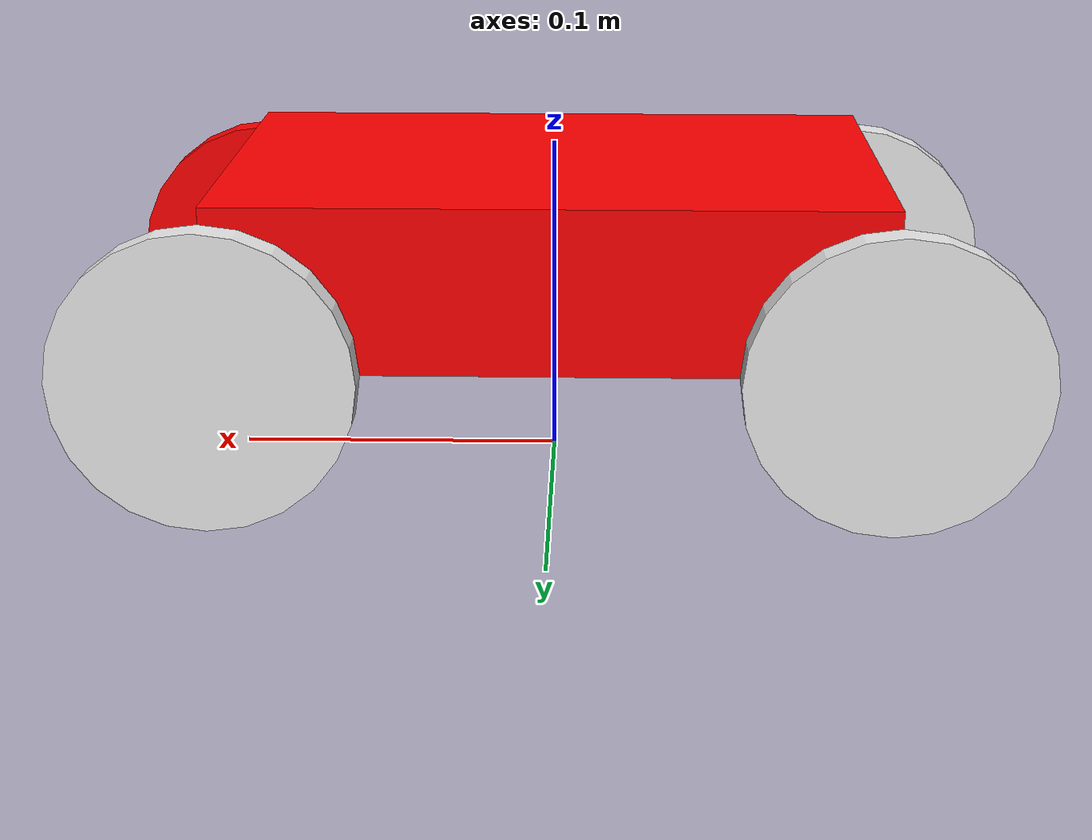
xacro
<?xml version="1.0"?>
<robot xmlns:xacro="http://www.ros.org/wiki/xacro" name="limo_ackerman">

    <xacro:include filename="gazebo.xacro"/>
    <xacro:include filename="imu.xacro"/>
    <xacro:include filename="transmission.xacro"/>

    <!-- Vehicle Geometries -->
    <xacro:property name="base_x_size" value="0.2" />
    <xacro:property name="base_y_size" value="0.13" />
    <xacro:property name="base_z_size" value="0.1" />
    <xacro:property name="wheelbase" value="0.2"/>
    <xacro:property name="track" value="0.14"/>
    <xacro:property name="base_mass" value="3.0"/>
    <xacro:property name="wheel_vertical_offset" value="0.0" />
    <xacro:property name="wheel_length" value="0.01" />
    <xacro:property name="wheel_radius" value="0.045" />

    <!-- BASE LINK -->

    <link name="base_footprint">

    </link>

    <!-- base_link LINK -->

    <joint name="base_joint" type="fixed">
        <parent link="base_footprint"/>
        <child link="base_link"/>
        <origin xyz="0 0 0.045"/>
    </joint>

    <link name="base_link">
        <xacro:inertial_box mass="3" x="${base_x_size}" y="${base_y_size}" z="${base_z_size}">
            <origin xyz="0 0 0.025" rpy="0 0 0"/>
        </xacro:inertial_box>
        <visual>
            <origin xyz="0 0 0.025" rpy="0 0 0" />
            <geometry>
                <box size="0.2 0.13 0.05"/>
            </geometry>
            <material name="Red">
                <color rgba="1 0 0 1"/>
            </material>
        </visual>
        <collision>
            <origin xyz="0 0 0.025" rpy="0 0 0" />
            <geometry>
                <box size="${base_x_size} ${base_y_size} ${base_z_size}"/>
            </geometry>
        </collision>
    </link>

    <!-- WHEEL LINK -->

    <link name="rear_right_wheel_link">
        <xacro:inertial_cylinder mass="0.1" length="${wheel_length}" radius="${wheel_radius}">
            <origin xyz="0 0 0" rpy="0 0 0"/>
        </xacro:inertial_cylinder>
        <visual>
            <origin xyz="0 0 0" rpy="0 0 0" />
            <geometry>
                <cylinder radius="${wheel_radius}" length="${wheel_length}1"/>
                <material name="Red">
                    <color rgba="1 0 0 1"/>
                </material>
            </geometry>
        </visual>
        <collision>
            <origin xyz="0 0 0" rpy="0 0 0" />
            <geometry>
                <cylinder radius="${wheel_radius}" length="${wheel_length}"/>
            </geometry>
        </collision>
    </link>

    <link name="rear_left_wheel_link">
        <xacro:inertial_cylinder mass="0.1" length="${wheel_length}" radius="${wheel_radius}">
            <origin xyz="0 0 0" rpy="0 0 0"/>
        </xacro:inertial_cylinder>
        <visual>
            <origin xyz="0 0 0" rpy="0 0 0" />
            <geometry>
                <cylinder radius="${wheel_radius}" length="${wheel_length}"/>
                <material name="Red">
                    <color rgba="1 0 0 1"/>
                </material>
            </geometry>
        </visual>
        <collision>
            <origin xyz="0 0 0" rpy="0 0 0" />
            <geometry>
                <cylinder radius="${wheel_radius}" length="${wheel_length}"/>
            </geometry>
        </collision>
    </link>

    <link name="front_right_wheel_link">
        <xacro:inertial_cylinder mass="0.1" length="${wheel_length}" radius="${wheel_radius}">
            <origin xyz="0 0 0" rpy="0 0 0"/>
        </xacro:inertial_cylinder>
        <visual>
            <origin xyz="0 0 0" rpy="0 0 0" />
            <geometry>
                <cylinder radius="${wheel_radius}" length="${wheel_length}"/>
            </geometry>
            <material name="Red">
                <color rgba="1 0 0 1"/>
            </material>
        </visual>
        <collision>
            <origin xyz="0 0 0" rpy="0 0 0" />
            <geometry>
                <cylinder radius="${wheel_radius}" length="${wheel_length}"/>
            </geometry>
        </collision>
    </link>

    <link name="front_left_wheel_link">
        <xacro:inertial_cylinder mass="0.1" length="${wheel_length}" radius="${wheel_radius}">
            <origin xyz="0 0 0" rpy="0 0 0"/>
        </xacro:inertial_cylinder>
        <visual>
            <origin xyz="0 0 0" rpy="0 0 0" />
            <geometry>
                <cylinder radius="${wheel_radius}" length="${wheel_length}"/>
                <material name="Red">
                    <color rgba="1 0 0 1"/>
                </material>
            </geometry>
        </visual>
        <collision>
            <origin xyz="0 0 0" rpy="0 0 0" />
            <geometry>
                <cylinder radius="${wheel_radius}" length="${wheel_length}"/>
            </geometry>
        </collision>
    </link>

    <link name="right_steering_hinge">
        <xacro:inertial_flip_cylinder mass="0.1" length="${wheel_length}" radius="${wheel_radius}">
            <origin xyz="0 0 0" rpy="0 0 0"/>
        </xacro:inertial_flip_cylinder>
    </link>
    <link name="left_steering_hinge">
        <xacro:inertial_flip_cylinder mass="0.1" length="${wheel_length}" radius="${wheel_radius}">
            <origin xyz="0 0 0" rpy="0 0 0"/>
        </xacro:inertial_flip_cylinder>
    </link>

    <!-- WHEEL JOINT -->

    <joint name="rear_left_wheel" type="continuous">
        <origin xyz="${-wheelbase/2} ${track/2} 0" rpy="-1.57079632679 0 0" />
        <parent link="base_link" />
        <child link="rear_left_wheel_link" />
        <axis xyz="0 0 1" />
        <limit
            effort="10.0"
            lower="-3.14159265359"
            upper="3.14159265359"
            velocity="20.0"
            />
    </joint>

    <joint name="rear_right_wheel" type="continuous">
        <origin xyz="${-wheelbase/2} ${-track/2} 0" rpy="-1.57079632679 0 0" />
        <parent link="base_link" />
        <child link="rear_right_wheel_link" />
        <axis xyz="0 0 1" />
        <limit
            effort="10.0"
            lower="-3.14159265359"
            upper="3.14159265359"
            velocity="20.0"
            />
    </joint>

    <joint name="left_steering_hinge_wheel" type="revolute">
        <origin xyz="${wheelbase/2} ${track/2} 0" rpy="0 0 0" />
        <parent link="base_link" />
        <child link="left_steering_hinge" />
        <axis xyz="0 0 1" />
        <limit
            effort="10.00"
            lower="-0.60"
            upper="0.60"
            velocity="10.00"/>
    </joint>

    <joint name="front_left_wheel" type="continuous">
        <origin xyz="0 0 0" rpy="-1.57079632679 0 0" />
        <parent link="left_steering_hinge" />
        <child link="front_left_wheel_link" />
        <axis xyz="0 0 1" />
        <limit
            effort="10.0"
            lower="-3.14159265359"
            upper="3.14159265359"
            velocity="20.0"
            />
    </joint>

    <joint name="right_steering_hinge_wheel" type="revolute">
        <origin xyz="${wheelbase/2} ${-track/2} 0" rpy="0 0 0" />
        <parent link="base_link" />
        <child link="right_steering_hinge" />
        <axis xyz="0 0 1" />
        <limit
            effort="10.00"
            lower="-0.60"
            upper="0.60"
            velocity="10.00"/>
    </joint>

    <joint name="front_right_wheel" type="continuous">
        <origin xyz="0 0 0" rpy="-1.57079632679 0 0" />
        <parent link="right_steering_hinge" />
        <child link="front_right_wheel_link" />
        <axis xyz="0 0 1" />
        <limit
            effort="10.0"
            lower="-3.14159265359"
            upper="3.14159265359"
            velocity="20.0"
            />
    </joint>

    <!-- TRANSMISSIONS -->
    <xacro:wheel_transmission wheel_prefix="left_front"/>
    <xacro:wheel_transmission wheel_prefix="right_front"/>
    <xacro:wheel_transmission wheel_prefix="left_rear"/>
    <xacro:wheel_transmission wheel_prefix="right_rear"/>
    <xacro:steering_hinge_transmission wheel_prefix="left"/>
    <xacro:steering_hinge_transmission wheel_prefix="right"/>

</robot>

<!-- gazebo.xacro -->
<robot xmlns:xacro="http://www.ros.org/wiki/xacro" name="ackbot">

    <xacro:include filename="inertial_macros.xacro"/>

    <ros2_control name="GazeboSystem" type="system">
        <hardware>
            <plugin>gazebo_ros2_control/GazeboSystem</plugin>
        </hardware>
        <joint name="rear_left_wheel">
            <command_interface name="velocity"/>
            <state_interface name="position">
                <param name="initial_value">0.0</param>
            </state_interface>
            <state_interface name="velocity"/>
            <state_interface name="effort"/>
        </joint>
        <joint name="rear_right_wheel">
            <command_interface name="velocity"/>
            <state_interface name="position">
                <param name="initial_value">0.0</param>
            </state_interface>
            <state_interface name="velocity"/>
            <state_interface name="effort"/>
        </joint>
        <joint name="left_steering_hinge_wheel">
            <command_interface name="position">
                <param name="min">-0.60</param>
                <param name="max">0.60</param>
            </command_interface>
            <command_interface name="velocity"/>
            <state_interface name="position">
                <param name="initial_value">0.0</param>
            </state_interface>
            <state_interface name="velocity"/>
            <state_interface name="effort"/>
        </joint>
        <joint name="right_steering_hinge_wheel">
            <command_interface name="position">
                <param name="min">-0.60</param>
                <param name="max">0.60</param>
            </command_interface>
            <command_interface name="velocity"/>
            <state_interface name="position">
                <param name="initial_value">0.0</param>
            </state_interface>
            <state_interface name="velocity"/>
            <state_interface name="effort"/>
        </joint>

        <joint name="front_left_wheel">
            <command_interface name="velocity"/>
            <state_interface name="position">
                <param name="initial_value">0.0</param>
            </state_interface>
            <state_interface name="velocity"/>
            <state_interface name="effort"/>
        </joint>

        <joint name="front_right_wheel">
            <command_interface name="velocity"/>
            <state_interface name="position">
                <param name="initial_value">0.0</param>
            </state_interface>
            <state_interface name="velocity"/>
            <state_interface name="effort"/>
        </joint>

    </ros2_control>

    <gazebo>
        <plugin filename="libgazebo_ros2_control.so" name="gazebo_ros2_control">
            <robot_sim_type>gazebo_ros2_control/GazeboSystem</robot_sim_type>
            <parameters>$(find limo_description)/config/gazebo_controllers.yaml</parameters>
        </plugin>
    </gazebo>

    <gazebo>
        <plugin name="ground_truth_plugin" filename="libgazebo_ros_p3d.so">
            <ros>
                <!-- The topic name where the position will be published -->
                <remapping>odom:=/odometry/ground_truth</remapping>
            </ros>
            <frame_name>odom</frame_name>
            <!-- Replace with your robot's main link -->
            <body_name>base_footprint</body_name>
            <!-- Update rate in Hz -->
            <update_rate>100.0</update_rate>
        </plugin>
    </gazebo>

    <gazebo reference="base_link">
        <material>Gazebo/Red</material>
        <minDepth>0.001</minDepth>
        <kp  value="10000000.0"/>
        <kd value="0.2"/>
    </gazebo>

    <gazebo reference="front_left_wheel_link">
        <material>Gazebo/White</material>
        <mu1>10.0</mu1>
        <mu2>10.0</mu2>
        <kp  value="10000000.0"/>
        <kd value="0.2"/>
    </gazebo>

    <gazebo reference="front_right_wheel_link">
        <material>Gazebo/White</material>
        <mu1>10.0</mu1>
        <mu2>10.0</mu2>
        <kp  value="10000000.0"/>
        <kd value="0.2"/>
    </gazebo>

    <gazebo reference="rear_left_wheel_link">
        <material>Gazebo/White</material>
        <mu1>10.0</mu1>
        <mu2>10.0</mu2>
        <kp  value="10000000.0"/>
        <kd value="0.2"/>
    </gazebo>

    <gazebo reference="rear_right_wheel_link">
        <material>Gazebo/White</material>
        <mu1>10.0</mu1>
        <mu2>10.0</mu2>
        <kp  value="10000000.0"/>
        <kd value="0.2"/>
    </gazebo>

    <gazebo reference="left_steering_hinge">
        <material>Gazebo/White</material>
        <mu1>0.1</mu1>
        <mu2>0.1</mu2>
        <kp  value="10000000.0"/>
        <kd value="0.2"/>
    </gazebo>

    <gazebo reference="right_steering_hinge">
        <material>Gazebo/White</material>
        <mu1>0.1</mu1>
        <mu2>0.1</mu2>
        <kp  value="10000000.0"/>
        <kd value="0.2"/>
    </gazebo>

</robot>

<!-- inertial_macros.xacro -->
<robot xmlns:xacro="http://www.ros.org/wiki/xacro" >

    <!-- Specify some standard inertial calculations https://en.wikipedia.org/wiki/List_of_moments_of_inertia -->
    <!-- These make use of xacro's mathematical functionality -->

    <xacro:macro name="inertial_sphere" params="mass radius *origin">
        <inertial>
            <xacro:insert_block name="origin"/>
            <mass value="${mass}" />
            <inertia ixx="${(2/5) * mass * (radius*radius)}" ixy="0.0" ixz="0.0"
                    iyy="${(2/5) * mass * (radius*radius)}" iyz="0.0"
                    izz="${(2/5) * mass * (radius*radius)}" />
        </inertial>
    </xacro:macro>

    <xacro:macro name="inertial_box" params="mass x y z *origin">
        <inertial>
            <xacro:insert_block name="origin"/>
            <mass value="${mass}" />
            <inertia ixx="${(1/12) * mass * (y*y+z*z)}" ixy="0.0" ixz="0.0"
                    iyy="${(1/12) * mass * (x*x+z*z)}" iyz="0.0"
                    izz="${(1/12) * mass * (x*x+y*y)}" />
        </inertial>
    </xacro:macro>

    <xacro:macro name="inertial_cylinder" params="mass length radius *origin">
        <inertial>
            <xacro:insert_block name="origin"/>
            <mass value="${mass}" />
            <inertia ixx="${(1/12) * mass * (3*radius*radius + length*length)}" ixy="0.0" ixz="0.0"
                    iyy="${(1/12) * mass * (3*radius*radius + length*length)}" iyz="0.0"
                    izz="${(1/2) * mass * (radius*radius)}" />
        </inertial>
    </xacro:macro>

    <xacro:macro name="inertial_flip_cylinder" params="mass length radius *origin">

        <inertial>
            <xacro:insert_block name="origin"/>
            <mass value="${mass}" />
            <inertia ixx="${(1/12) * mass * (3*radius*radius + length*length)}" ixy="0.0" ixz="0.0"
                    iyy="${(1/2) * mass * (radius*radius)}" iyz="0.0"
                    izz="${(1/12) * mass * (3*radius*radius + length*length)}" />
        </inertial>
    </xacro:macro>

</robot>

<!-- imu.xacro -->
<robot xmlns:xacro="http://www.ros.org/wiki/xacro" >

    <joint name="imu_joint" type="fixed">
        <parent link="base_link"/>
        <child link="imu_link"/>
        <origin xyz="0 0 0" rpy="0 0 0"/>
    </joint>

    <link name="imu_link">
        <visual>
            <geometry>
                <cylinder radius="0.02" length="0.01"/>
            </geometry>
            <material name="Yellow">
                <color rgba="1 1 0 1"/>
            </material>
        </visual>
        <collision>
            <geometry>
                <cylinder radius="0.02" length="0.01"/>
            </geometry>
        </collision>
        <xacro:inertial_cylinder mass="0.1" length="0.01" radius="0.02">
            <origin xyz="0 0 0" rpy="0 0 0"/>
        </xacro:inertial_cylinder>
    </link>

    <gazebo reference="imu_link">
        <gravity>true</gravity>
        <material>Gazebo/Yellow</material>
        <sensor name="imu_sensor" type="imu">
            <always_on>true</always_on>
            <update_rate>100</update_rate>
            <visualize>true</visualize>
            <topic>__default_topic__</topic>
            <plugin filename="libgazebo_ros_imu_sensor.so" name="imu_plugin">
                <ros >
                    <remapping>/imu_plugin/out:=/limo/imu</remapping>
                </ros>
                <topicName>imu</topicName>
                <bodyName>imu_link</bodyName>
                <updateRateHZ>100.0</updateRateHZ>
                <gaussianNoise>0.005</gaussianNoise>
                <xyzOffset>0 0 0</xyzOffset>
                <rpyOffset>0 0 0</rpyOffset>
                <frame_name>imu_link</frame_name>
                <initialOrientationAsReference>false</initialOrientationAsReference>
            </plugin>
            <pose>0 0 0 0 0 0</pose>
        </sensor>
    </gazebo>
</robot>
